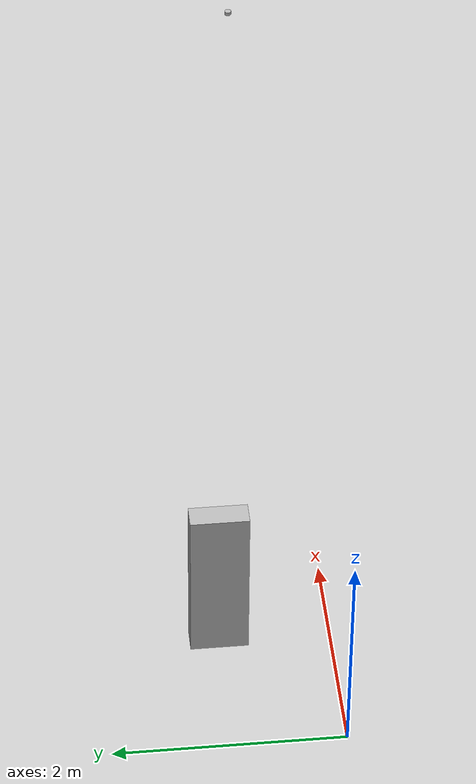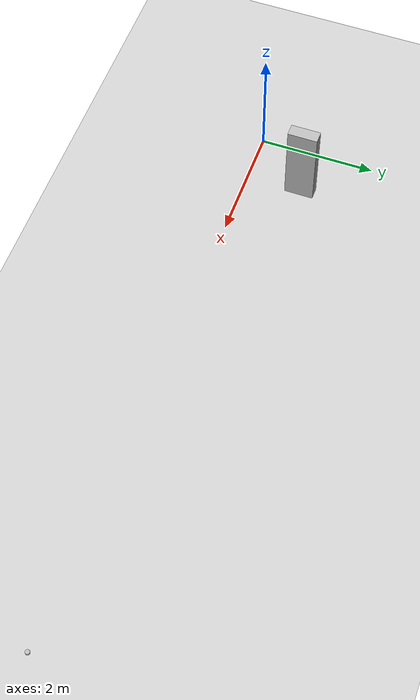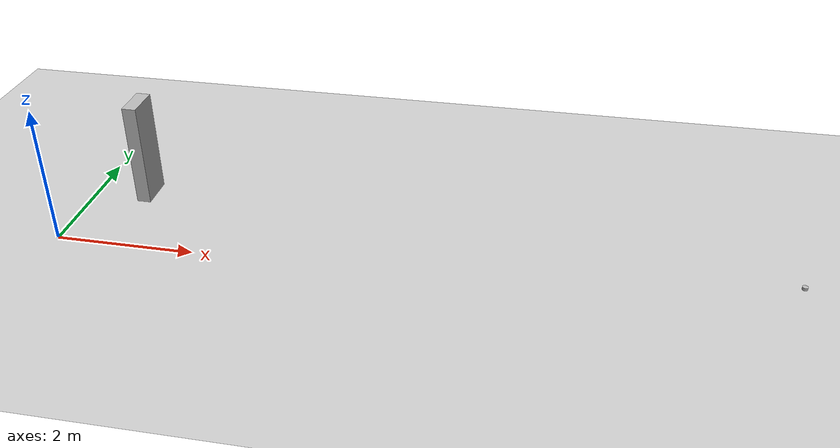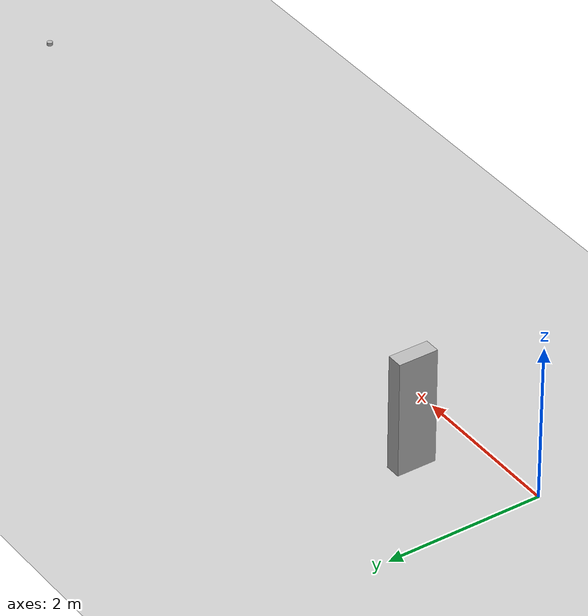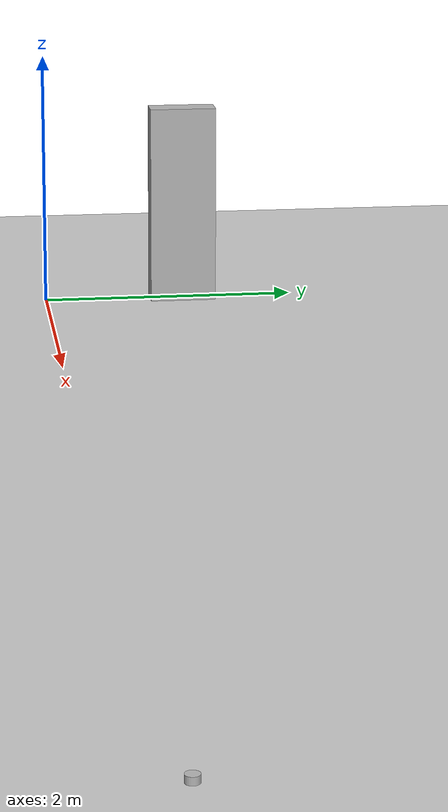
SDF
<?xml version="1.0"?>
<sdf version="1.4">
  <world name="default">

    <!-- Ground Plane -->
    <include>
      <uri>model://ground_plane</uri>
    </include>

    <include>
      <uri>model://sun</uri>
    </include>

    <model name="child">
      <pose>1 1 0 0 0 0</pose>
      <include>
        <uri>model://child</uri>
      </include>
    </model>

    <model name ="lidar">
      <pose>10 0 0.5 0 0 0</pose>
      <include>
        <uri>model://lidar_model</uri>
      </include>
    </model>

  </world>
</sdf>

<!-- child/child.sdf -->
<sdf version="1.6">
    <model name="child">
        <pose>0 0 1 0 0 0</pose>
        <link name="link">

        <gravity>0</gravity>
        <collision name="collision">
            <geometry>
            <box>
                <size>0.2 0.5 1.5 </size>
            </box>
            </geometry>
        </collision>

        <visual name="visual">
            <geometry>
            <box>
                <size>0.2 0.5 1.5</size>
            </box>
            </geometry>
        </visual>

            <inertial>
                <mass value="50"/>
            </inertial>

        </link>

        <plugin name="model_child" filename="libmodel_child.so">
            <velocity>0</velocity>
            <angle>0</angle>
        </plugin>
    </model>
</sdf>

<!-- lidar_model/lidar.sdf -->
<sdf version="1.6">
<model name="lidar">
	<static>true</static>
	<link name="lidar_link">
		<pose>0 0 0.02 0 0 0</pose>
      	<collision name="base_collision">
			<geometry>
				<cylinder>
					<radius>0.036285</radius>
					<length>0.04</length>
				</cylinder>
			</geometry>
      	</collision>

		<visual name="base_visual">
			<geometry>
				<cylinder>
					<radius>0.036285</radius>
					<length>0.04</length>
				</cylinder>
			</geometry>
		</visual>

		<sensor type="ray" name="sensor">
			<pose>0 0 -0.004645 0 0 0</pose>
			<visualize>true</visualize>
			<update_rate>10</update_rate>
			<ray>
				<scan>
					<horizontal>
						<samples>360</samples>
						<resolution>1</resolution>
						<min_angle>-3.141592</min_angle>
						<max_angle>3.141592</max_angle>
					</horizontal>
					<vertical>
						<samples>1</samples>
						<resolution>1</resolution>
						<min_angle>0</min_angle>
						<max_angle>-0.1</max_angle>
					</vertical>
				</scan>
				<range>
					<min>0.2</min>
					<max>18</max>
					<resolution>0.02</resolution>
				</range>
			</ray>
			<plugin name="lidar_control" filename="libsim_lidar_plugin.so">
        <lidardatatopicName>/sensor/lidar</lidardatatopicName>
				<topicName>/sensor/lidar/scan</topicName>
				<frameName>laser</frameName>
			</plugin>
		</sensor>
	</link>
</model>
</sdf>
